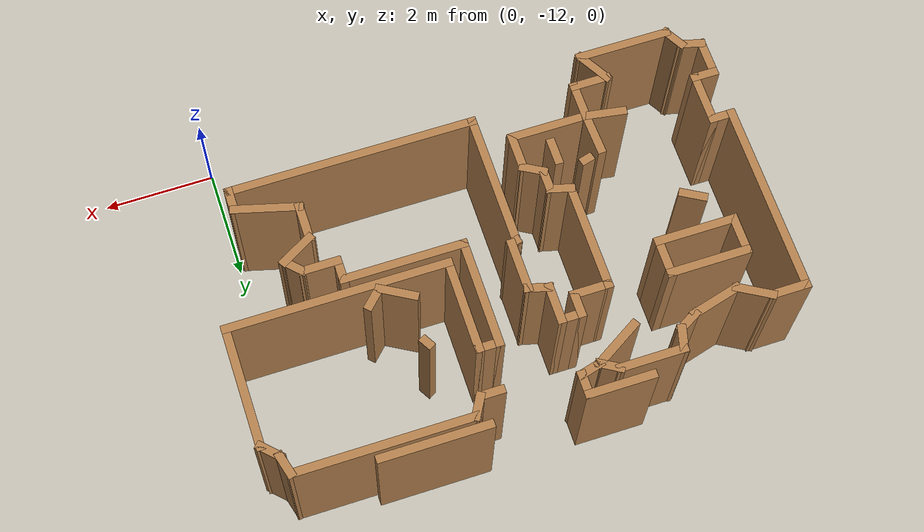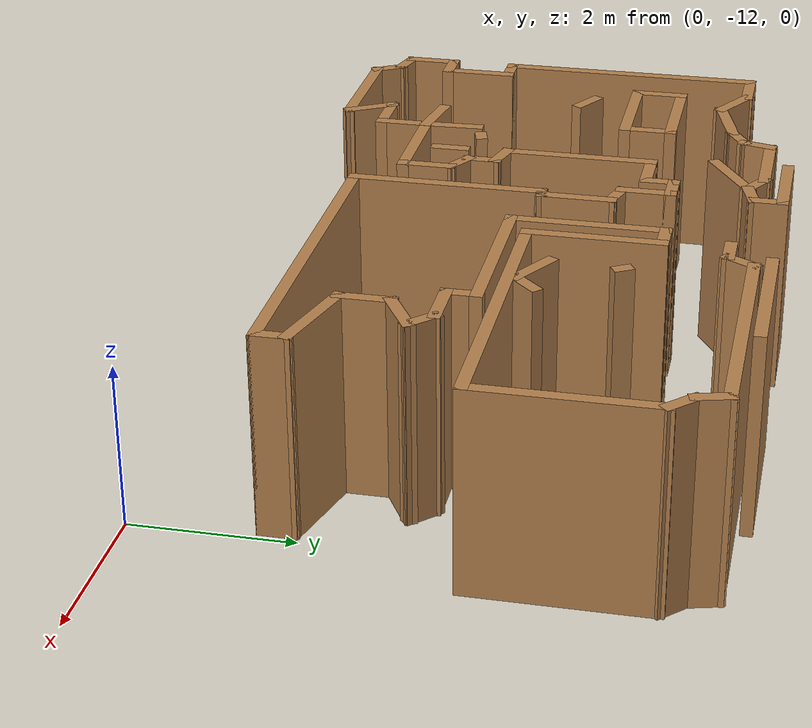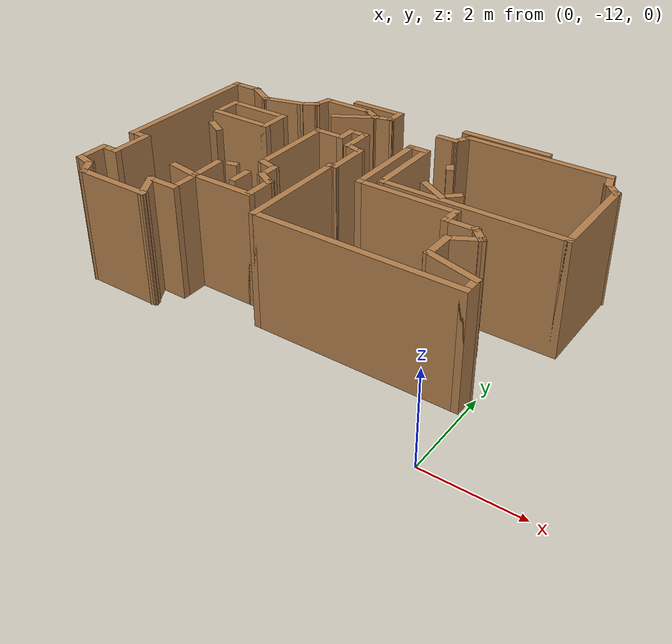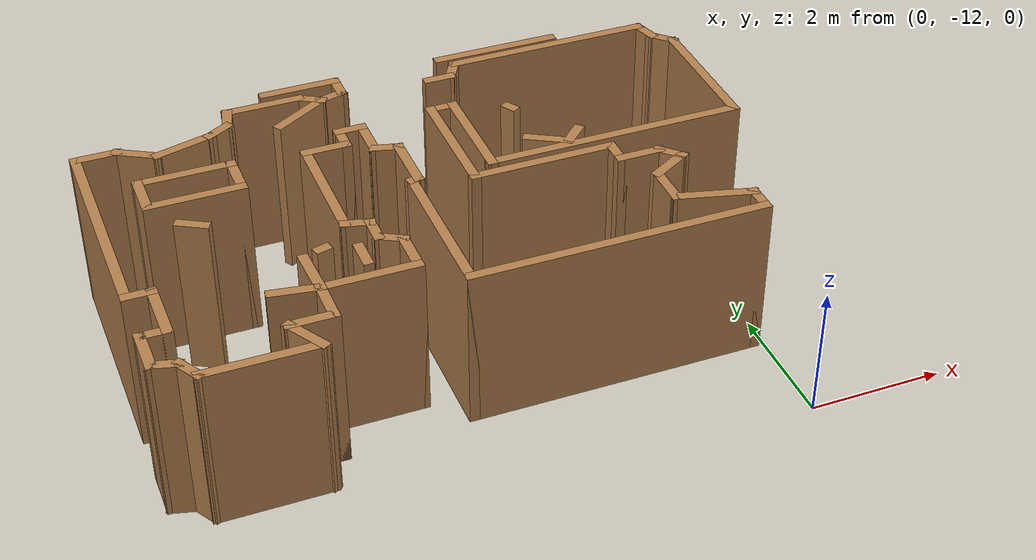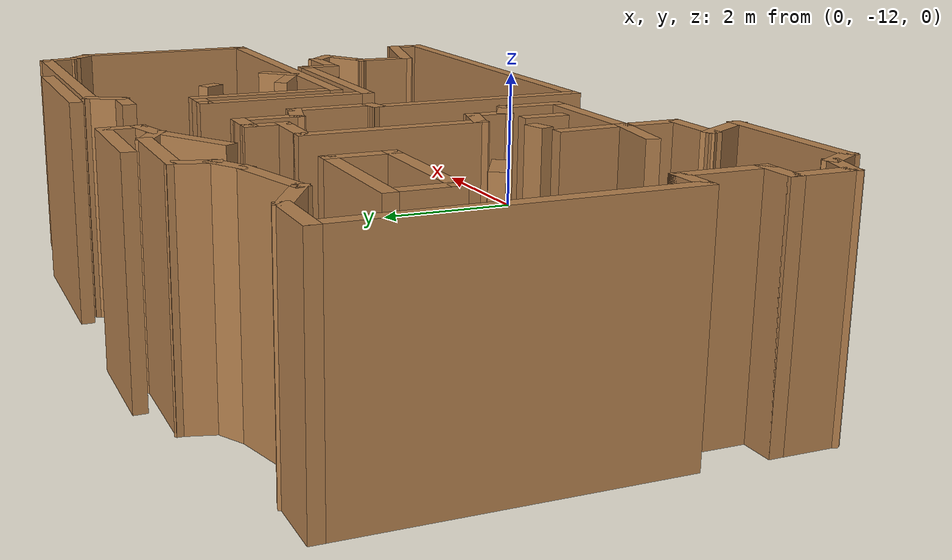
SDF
<sdf version="1.6">
 <model name="map_31">
  <pose>-4.20908 -1.66774 0 0 -0 0</pose>
  <link name="Wall_146">
   <collision name="Wall_146_Collision">
    <geometry><box><size>1.05065 0.15 2.5</size></box></geometry>
    <pose>0 0 1.25 0 -0 0</pose>
   </collision>
   <visual name="Wall_146_Visual">
    <pose>0 0 1.25 0 -0 0</pose>
    <geometry><box><size>1.05065 0.15 2.5</size></box></geometry>
    <material>
     <script><uri>file://media/materials/scripts/gazebo.material</uri><name>Gazebo/Wood</name></script>
     <ambient>1 1 1 1</ambient>
    </material>
    <meta><layer>0</layer></meta>
   </visual>
   <pose>-1.25131 -4.16078 0 0 -0 0.545501</pose>
  </link>
  <link name="Wall_148">
   <collision name="Wall_148_Collision">
    <geometry><box><size>0.796706 0.15 2.5</size></box></geometry>
    <pose>0 0 1.25 0 -0 0</pose>
   </collision>
   <visual name="Wall_148_Visual">
    <pose>0 0 1.25 0 -0 0</pose>
    <geometry><box><size>0.796706 0.15 2.5</size></box></geometry>
    <material>
     <script><uri>file://media/materials/scripts/gazebo.material</uri><name>Gazebo/Wood</name></script>
     <ambient>1 1 1 1</ambient>
    </material>
    <meta><layer>0</layer></meta>
   </visual>
   <pose>-2.51001 -8.20815 0 0 -0 -0.158782</pose>
  </link>
  <link name="Wall_150">
   <collision name="Wall_150_Collision">
    <geometry><box><size>0.833993 0.15 2.5</size></box></geometry>
    <pose>0 0 1.25 0 -0 0</pose>
   </collision>
   <visual name="Wall_150_Visual">
    <pose>0 0 1.25 0 -0 0</pose>
    <geometry><box><size>0.833993 0.15 2.5</size></box></geometry>
    <material>
     <script><uri>file://media/materials/scripts/gazebo.material</uri><name>Gazebo/Wood</name></script>
     <ambient>1 1 1 1</ambient>
    </material>
    <meta><layer>0</layer></meta>
   </visual>
   <pose>-2.20411 -7.91754 0 0 -0 -1.53165</pose>
  </link>
  <link name="Wall_152">
   <collision name="Wall_152_Collision">
    <geometry><box><size>0.5 0.15 2.5</size></box></geometry>
    <pose>0 0 1.25 0 -0 0</pose>
   </collision>
   <visual name="Wall_152_Visual">
    <pose>0 0 1.25 0 -0 0</pose>
    <geometry><box><size>0.5 0.15 2.5</size></box></geometry>
    <material>
     <script><uri>file://media/materials/scripts/gazebo.material</uri><name>Gazebo/Wood</name></script>
     <ambient>1 1 1 1</ambient>
    </material>
    <meta><layer>0</layer></meta>
   </visual>
   <pose>-1.45274 -7.7814 0 0 -0 -1.5708</pose>
  </link>
  <link name="Wall_154">
   <collision name="Wall_154_Collision">
    <geometry><box><size>0.25 0.15 2.5</size></box></geometry>
    <pose>0 0 1.25 0 -0 0</pose>
   </collision>
   <visual name="Wall_154_Visual">
    <pose>0 0 1.25 0 -0 0</pose>
    <geometry><box><size>0.25 0.15 2.5</size></box></geometry>
    <material>
     <script><uri>file://media/materials/scripts/gazebo.material</uri><name>Gazebo/Wood</name></script>
     <ambient>1 1 1 1</ambient>
    </material>
    <meta><layer>0</layer></meta>
   </visual>
   <pose>-1.92447 -7.4711 0 0 -0 0.261799</pose>
  </link>
  <link name="Wall_156">
   <collision name="Wall_156_Collision">
    <geometry><box><size>0.5 0.15 2.5</size></box></geometry>
    <pose>0 0 1.25 0 -0 0</pose>
   </collision>
   <visual name="Wall_156_Visual">
    <pose>0 0 1.25 0 -0 0</pose>
    <geometry><box><size>0.5 0.15 2.5</size></box></geometry>
    <material>
     <script><uri>file://media/materials/scripts/gazebo.material</uri><name>Gazebo/Wood</name></script>
     <ambient>1 1 1 1</ambient>
    </material>
    <meta><layer>0</layer></meta>
   </visual>
   <pose>-3.41191 -6.28675 0 0 -0 -0.523599</pose>
  </link>
  <link name="Wall_158">
   <collision name="Wall_158_Collision">
    <geometry><box><size>0.75 0.15 2.5</size></box></geometry>
    <pose>0 0 1.25 0 -0 0</pose>
   </collision>
   <visual name="Wall_158_Visual">
    <pose>0 0 1.25 0 -0 0</pose>
    <geometry><box><size>0.75 0.15 2.5</size></box></geometry>
    <material>
     <script><uri>file://media/materials/scripts/gazebo.material</uri><name>Gazebo/Wood</name></script>
     <ambient>1 1 1 1</ambient>
    </material>
    <meta><layer>0</layer></meta>
   </visual>
   <pose>-3.89995 -5.36741 0 0 -0 -1.5708</pose>
  </link>
  <link name="Wall_159">
   <collision name="Wall_159_Collision">
    <geometry><box><size>1.5 0.15 2.5</size></box></geometry>
    <pose>0 0 1.25 0 -0 0</pose>
   </collision>
   <visual name="Wall_159_Visual">
    <pose>0 0 1.25 0 -0 0</pose>
    <geometry><box><size>1.5 0.15 2.5</size></box></geometry>
    <material>
     <script><uri>file://media/materials/scripts/gazebo.material</uri><name>Gazebo/Wood</name></script>
     <ambient>1 1 1 1</ambient>
    </material>
    <meta><layer>0</layer></meta>
   </visual>
   <pose>-3.22495 -5.66741 0 0 -0 0</pose>
  </link>
  <link name="Wall_160">
   <collision name="Wall_160_Collision">
    <geometry><box><size>0.75 0.15 2.5</size></box></geometry>
    <pose>0 0 1.25 0 -0 0</pose>
   </collision>
   <visual name="Wall_160_Visual">
    <pose>0 0 1.25 0 -0 0</pose>
    <geometry><box><size>0.75 0.15 2.5</size></box></geometry>
    <material>
     <script><uri>file://media/materials/scripts/gazebo.material</uri><name>Gazebo/Wood</name></script>
     <ambient>1 1 1 1</ambient>
    </material>
    <meta><layer>0</layer></meta>
   </visual>
   <pose>-2.54996 -5.36741 0 0 -0 1.5708</pose>
  </link>
  <link name="Wall_161">
   <collision name="Wall_161_Collision">
    <geometry><box><size>1.5 0.15 2.5</size></box></geometry>
    <pose>0 0 1.25 0 -0 0</pose>
   </collision>
   <visual name="Wall_161_Visual">
    <pose>0 0 1.25 0 -0 0</pose>
    <geometry><box><size>1.5 0.15 2.5</size></box></geometry>
    <material>
     <script><uri>file://media/materials/scripts/gazebo.material</uri><name>Gazebo/Wood</name></script>
     <ambient>1 1 1 1</ambient>
    </material>
    <meta><layer>0</layer></meta>
   </visual>
   <pose>-3.22495 -5.06741 0 0 -0 3.14159</pose>
  </link>
  <link name="Wall_163">
   <collision name="Wall_163_Collision">
    <geometry><box><size>0.25 0.15 2.5</size></box></geometry>
    <pose>0 0 1.25 0 -0 0</pose>
   </collision>
   <visual name="Wall_163_Visual">
    <pose>0 0 1.25 0 -0 0</pose>
    <geometry><box><size>0.25 0.15 2.5</size></box></geometry>
    <material>
     <script><uri>file://media/materials/scripts/gazebo.material</uri><name>Gazebo/Wood</name></script>
     <ambient>1 1 1 1</ambient>
    </material>
    <meta><layer>0</layer></meta>
   </visual>
   <pose>1.69247 -5.1413 0 0 -0 -1.0472</pose>
  </link>
  <link name="Wall_165">
   <collision name="Wall_165_Collision">
    <geometry><box><size>0.75 0.15 2.5</size></box></geometry>
    <pose>0 0 1.25 0 -0 0</pose>
   </collision>
   <visual name="Wall_165_Visual">
    <pose>0 0 1.25 0 -0 0</pose>
    <geometry><box><size>0.75 0.15 2.5</size></box></geometry>
    <material>
     <script><uri>file://media/materials/scripts/gazebo.material</uri><name>Gazebo/Wood</name></script>
     <ambient>1 1 1 1</ambient>
    </material>
    <meta><layer>0</layer></meta>
   </visual>
   <pose>1.89668 -6.13512 0 0 -0 -0.523599</pose>
  </link>
  <link name="Wall_166">
   <collision name="Wall_166_Collision">
    <geometry><box><size>0.5 0.15 2.5</size></box></geometry>
    <pose>0 0 1.25 0 -0 0</pose>
   </collision>
   <visual name="Wall_166_Visual">
    <pose>0 0 1.25 0 -0 0</pose>
    <geometry><box><size>0.5 0.15 2.5</size></box></geometry>
    <material>
     <script><uri>file://media/materials/scripts/gazebo.material</uri><name>Gazebo/Wood</name></script>
     <ambient>1 1 1 1</ambient>
    </material>
    <meta><layer>0</layer></meta>
   </visual>
   <pose>2.28024 -6.16137 0 0 -0 0.785398</pose>
  </link>
  <link name="Wall_23">
   <collision name="Wall_23_Collision">
    <geometry><box><size>1.25 0.15 2.5</size></box></geometry>
    <pose>0 0 1.25 0 -0 0</pose>
   </collision>
   <visual name="Wall_23_Visual">
    <pose>0 0 1.25 0 -0 0</pose>
    <geometry><box><size>1.25 0.15 2.5</size></box></geometry>
    <material>
     <script><uri>file://media/materials/scripts/gazebo.material</uri><name>Gazebo/Wood</name></script>
     <ambient>1 1 1 1</ambient>
    </material>
    <meta><layer>0</layer></meta>
   </visual>
   <pose>-1.07827 -3.48654 0 0 -0 0</pose>
  </link>
  <link name="Wall_24">
   <collision name="Wall_24_Collision">
    <geometry><box><size>0.5 0.15 2.5</size></box></geometry>
    <pose>0 0 1.25 0 -0 0</pose>
   </collision>
   <visual name="Wall_24_Visual">
    <pose>0 0 1.25 0 -0 0</pose>
    <geometry><box><size>0.5 0.15 2.5</size></box></geometry>
    <material>
     <script><uri>file://media/materials/scripts/gazebo.material</uri><name>Gazebo/Wood</name></script>
     <ambient>1 1 1 1</ambient>
    </material>
    <meta><layer>0</layer></meta>
   </visual>
   <pose>-0.528269 -3.66154 0 0 -0 -1.5708</pose>
  </link>
  <link name="Wall_25">
   <collision name="Wall_25_Collision">
    <geometry><box><size>0.5 0.15 2.5</size></box></geometry>
    <pose>0 0 1.25 0 -0 0</pose>
   </collision>
   <visual name="Wall_25_Visual">
    <pose>0 0 1.25 0 -0 0</pose>
    <geometry><box><size>0.5 0.15 2.5</size></box></geometry>
    <material>
     <script><uri>file://media/materials/scripts/gazebo.material</uri><name>Gazebo/Wood</name></script>
     <ambient>1 1 1 1</ambient>
    </material>
    <meta><layer>0</layer></meta>
   </visual>
   <pose>-0.697306 -3.88183 0 0 -0 -2.87979</pose>
  </link>
  <link name="Wall_26">
   <collision name="Wall_26_Collision">
    <geometry><box><size>0.5 0.15 2.5</size></box></geometry>
    <pose>0 0 1.25 0 -0 0</pose>
   </collision>
   <visual name="Wall_26_Visual">
    <pose>0 0 1.25 0 -0 0</pose>
    <geometry><box><size>0.5 0.15 2.5</size></box></geometry>
    <material>
     <script><uri>file://media/materials/scripts/gazebo.material</uri><name>Gazebo/Wood</name></script>
     <ambient>1 1 1 1</ambient>
    </material>
    <meta><layer>0</layer></meta>
   </visual>
   <pose>-1.0179 -3.83963 0 0 -0 2.61799</pose>
  </link>
  <link name="Wall_27">
   <collision name="Wall_27_Collision">
    <geometry><box><size>1.25 0.15 2.5</size></box></geometry>
    <pose>0 0 1.25 0 -0 0</pose>
   </collision>
   <visual name="Wall_27_Visual">
    <pose>0 0 1.25 0 -0 0</pose>
    <geometry><box><size>1.25 0.15 2.5</size></box></geometry>
    <material>
     <script><uri>file://media/materials/scripts/gazebo.material</uri><name>Gazebo/Wood</name></script>
     <ambient>1 1 1 1</ambient>
    </material>
    <meta><layer>0</layer></meta>
   </visual>
   <pose>-1.71945 -3.75213 0 0 -0 3.14159</pose>
  </link>
  <link name="Wall_28">
   <collision name="Wall_28_Collision">
    <geometry><box><size>0.5 0.15 2.5</size></box></geometry>
    <pose>0 0 1.25 0 -0 0</pose>
   </collision>
   <visual name="Wall_28_Visual">
    <pose>0 0 1.25 0 -0 0</pose>
    <geometry><box><size>0.5 0.15 2.5</size></box></geometry>
    <material>
     <script><uri>file://media/materials/scripts/gazebo.material</uri><name>Gazebo/Wood</name></script>
     <ambient>1 1 1 1</ambient>
    </material>
    <meta><layer>0</layer></meta>
   </visual>
   <pose>-2.31474 -3.92116 0 0 -0 -1.8326</pose>
  </link>
  <link name="Wall_29">
   <collision name="Wall_29_Collision">
    <geometry><box><size>0.5 0.15 2.5</size></box></geometry>
    <pose>0 0 1.25 0 -0 0</pose>
   </collision>
   <visual name="Wall_29_Visual">
    <pose>0 0 1.25 0 -0 0</pose>
    <geometry><box><size>0.5 0.15 2.5</size></box></geometry>
    <material>
     <script><uri>file://media/materials/scripts/gazebo.material</uri><name>Gazebo/Wood</name></script>
     <ambient>1 1 1 1</ambient>
    </material>
    <meta><layer>0</layer></meta>
   </visual>
   <pose>-2.51159 -4.1777 0 0 -0 -2.61799</pose>
  </link>
  <link name="Wall_32">
   <collision name="Wall_32_Collision">
    <geometry><box><size>1 0.15 2.5</size></box></geometry>
    <pose>0 0 1.25 0 -0 0</pose>
   </collision>
   <visual name="Wall_32_Visual">
    <pose>0 0 1.25 0 -0 0</pose>
    <geometry><box><size>1 0.15 2.5</size></box></geometry>
    <material>
     <script><uri>file://media/materials/scripts/gazebo.material</uri><name>Gazebo/Wood</name></script>
     <ambient>1 1 1 1</ambient>
    </material>
    <meta><layer>0</layer></meta>
   </visual>
   <pose>-3.07367 -4.3752 0 0 -0 -2.87979</pose>
  </link>
  <link name="Wall_33">
   <collision name="Wall_33_Collision">
    <geometry><box><size>0.75 0.15 2.5</size></box></geometry>
    <pose>0 0 1.25 0 -0 0</pose>
   </collision>
   <visual name="Wall_33_Visual">
    <pose>0 0 1.25 0 -0 0</pose>
    <geometry><box><size>0.75 0.15 2.5</size></box></geometry>
    <material>
     <script><uri>file://media/materials/scripts/gazebo.material</uri><name>Gazebo/Wood</name></script>
     <ambient>1 1 1 1</ambient>
    </material>
    <meta><layer>0</layer></meta>
   </visual>
   <pose>-3.74399 -4.3352 0 0 -0 2.61799</pose>
  </link>
  <link name="Wall_34">
   <collision name="Wall_34_Collision">
    <geometry><box><size>0.75 0.15 2.5</size></box></geometry>
    <pose>0 0 1.25 0 -0 0</pose>
   </collision>
   <visual name="Wall_34_Visual">
    <pose>0 0 1.25 0 -0 0</pose>
    <geometry><box><size>0.75 0.15 2.5</size></box></geometry>
    <material>
     <script><uri>file://media/materials/scripts/gazebo.material</uri><name>Gazebo/Wood</name></script>
     <ambient>1 1 1 1</ambient>
    </material>
    <meta><layer>0</layer></meta>
   </visual>
   <pose>-4.3038 -4.1852 0 0 -0 3.14159</pose>
  </link>
  <link name="Wall_35">
   <collision name="Wall_35_Collision">
    <geometry><box><size>3.5 0.15 2.5</size></box></geometry>
    <pose>0 0 1.25 0 -0 0</pose>
   </collision>
   <visual name="Wall_35_Visual">
    <pose>0 0 1.25 0 -0 0</pose>
    <geometry><box><size>3.5 0.15 2.5</size></box></geometry>
    <material>
     <script><uri>file://media/materials/scripts/gazebo.material</uri><name>Gazebo/Wood</name></script>
     <ambient>1 1 1 1</ambient>
    </material>
    <meta><layer>0</layer></meta>
   </visual>
   <pose>-4.6038 -5.8602 0 0 -0 -1.5708</pose>
  </link>
  <link name="Wall_36">
   <collision name="Wall_36_Collision">
    <geometry><box><size>0.5 0.15 2.5</size></box></geometry>
    <pose>0 0 1.25 0 -0 0</pose>
   </collision>
   <visual name="Wall_36_Visual">
    <pose>0 0 1.25 0 -0 0</pose>
    <geometry><box><size>0.5 0.15 2.5</size></box></geometry>
    <material>
     <script><uri>file://media/materials/scripts/gazebo.material</uri><name>Gazebo/Wood</name></script>
     <ambient>1 1 1 1</ambient>
    </material>
    <meta><layer>0</layer></meta>
   </visual>
   <pose>-4.4288 -7.5352 0 0 -0 0</pose>
  </link>
  <link name="Wall_37">
   <collision name="Wall_37_Collision">
    <geometry><box><size>1 0.15 2.5</size></box></geometry>
    <pose>0 0 1.25 0 -0 0</pose>
   </collision>
   <visual name="Wall_37_Visual">
    <pose>0 0 1.25 0 -0 0</pose>
    <geometry><box><size>1 0.15 2.5</size></box></geometry>
    <material>
     <script><uri>file://media/materials/scripts/gazebo.material</uri><name>Gazebo/Wood</name></script>
     <ambient>1 1 1 1</ambient>
    </material>
    <meta><layer>0</layer></meta>
   </visual>
   <pose>-4.2538 -7.9602 0 0 -0 -1.5708</pose>
  </link>
  <link name="Wall_38">
   <collision name="Wall_38_Collision">
    <geometry><box><size>0.5 0.15 2.5</size></box></geometry>
    <pose>0 0 1.25 0 -0 0</pose>
   </collision>
   <visual name="Wall_38_Visual">
    <pose>0 0 1.25 0 -0 0</pose>
    <geometry><box><size>0.5 0.15 2.5</size></box></geometry>
    <material>
     <script><uri>file://media/materials/scripts/gazebo.material</uri><name>Gazebo/Wood</name></script>
     <ambient>1 1 1 1</ambient>
    </material>
    <meta><layer>0</layer></meta>
   </visual>
   <pose>-4.4288 -8.3852 0 0 -0 3.14159</pose>
  </link>
  <link name="Wall_39">
   <collision name="Wall_39_Collision">
    <geometry><box><size>0.75 0.15 2.5</size></box></geometry>
    <pose>0 0 1.25 0 -0 0</pose>
   </collision>
   <visual name="Wall_39_Visual">
    <pose>0 0 1.25 0 -0 0</pose>
    <geometry><box><size>0.75 0.15 2.5</size></box></geometry>
    <material>
     <script><uri>file://media/materials/scripts/gazebo.material</uri><name>Gazebo/Wood</name></script>
     <ambient>1 1 1 1</ambient>
    </material>
    <meta><layer>0</layer></meta>
   </visual>
   <pose>-4.6038 -8.6852 0 0 -0 -1.5708</pose>
  </link>
  <link name="Wall_40">
   <collision name="Wall_40_Collision">
    <geometry><box><size>0.5 0.15 2.5</size></box></geometry>
    <pose>0 0 1.25 0 -0 0</pose>
   </collision>
   <visual name="Wall_40_Visual">
    <pose>0 0 1.25 0 -0 0</pose>
    <geometry><box><size>0.5 0.15 2.5</size></box></geometry>
    <material>
     <script><uri>file://media/materials/scripts/gazebo.material</uri><name>Gazebo/Wood</name></script>
     <ambient>1 1 1 1</ambient>
    </material>
    <meta><layer>0</layer></meta>
   </visual>
   <pose>-4.43476 -9.03049 0 0 -0 -0.261799</pose>
  </link>
  <link name="Wall_41">
   <collision name="Wall_41_Collision">
    <geometry><box><size>0.5 0.15 2.5</size></box></geometry>
    <pose>0 0 1.25 0 -0 0</pose>
   </collision>
   <visual name="Wall_41_Visual">
    <pose>0 0 1.25 0 -0 0</pose>
    <geometry><box><size>0.5 0.15 2.5</size></box></geometry>
    <material>
     <script><uri>file://media/materials/scripts/gazebo.material</uri><name>Gazebo/Wood</name></script>
     <ambient>1 1 1 1</ambient>
    </material>
    <meta><layer>0</layer></meta>
   </visual>
   <pose>-4.17823 -9.22734 0 0 -0 -1.0472</pose>
  </link>
  <link name="Wall_42">
   <collision name="Wall_42_Collision">
    <geometry><box><size>1.75 0.15 2.5</size></box></geometry>
    <pose>0 0 1.25 0 -0 0</pose>
   </collision>
   <visual name="Wall_42_Visual">
    <pose>0 0 1.25 0 -0 0</pose>
    <geometry><box><size>1.75 0.15 2.5</size></box></geometry>
    <material>
     <script><uri>file://media/materials/scripts/gazebo.material</uri><name>Gazebo/Wood</name></script>
     <ambient>1 1 1 1</ambient>
    </material>
    <meta><layer>0</layer></meta>
   </visual>
   <pose>-3.29073 -9.37889 0 0 -0 0</pose>
  </link>
  <link name="Wall_43">
   <collision name="Wall_43_Collision">
    <geometry><box><size>0.75 0.15 2.5</size></box></geometry>
    <pose>0 0 1.25 0 -0 0</pose>
   </collision>
   <visual name="Wall_43_Visual">
    <pose>0 0 1.25 0 -0 0</pose>
    <geometry><box><size>0.75 0.15 2.5</size></box></geometry>
    <material>
     <script><uri>file://media/materials/scripts/gazebo.material</uri><name>Gazebo/Wood</name></script>
     <ambient>1 1 1 1</ambient>
    </material>
    <meta><layer>0</layer></meta>
   </visual>
   <pose>-2.64073 -9.11908 0 0 -0 2.0944</pose>
  </link>
  <link name="Wall_44">
   <collision name="Wall_44_Collision">
    <geometry><box><size>0.75 0.15 2.5</size></box></geometry>
    <pose>0 0 1.25 0 -0 0</pose>
   </collision>
   <visual name="Wall_44_Visual">
    <pose>0 0 1.25 0 -0 0</pose>
    <geometry><box><size>0.75 0.15 2.5</size></box></geometry>
    <material>
     <script><uri>file://media/materials/scripts/gazebo.material</uri><name>Gazebo/Wood</name></script>
     <ambient>1 1 1 1</ambient>
    </material>
    <meta><layer>0</layer></meta>
   </visual>
   <pose>-2.49072 -8.85928 0 0 -0 0</pose>
  </link>
  <link name="Wall_45">
   <collision name="Wall_45_Collision">
    <geometry><box><size>0.75 0.15 2.5</size></box></geometry>
    <pose>0 0 1.25 0 -0 0</pose>
   </collision>
   <visual name="Wall_45_Visual">
    <pose>0 0 1.25 0 -0 0</pose>
    <geometry><box><size>0.75 0.15 2.5</size></box></geometry>
    <material>
     <script><uri>file://media/materials/scripts/gazebo.material</uri><name>Gazebo/Wood</name></script>
     <ambient>1 1 1 1</ambient>
    </material>
    <meta><layer>0</layer></meta>
   </visual>
   <pose>-2.19073 -8.55928 0 0 -0 1.5708</pose>
  </link>
  <link name="Wall_46">
   <collision name="Wall_46_Collision">
    <geometry><box><size>1.5 0.15 2.5</size></box></geometry>
    <pose>0 0 1.25 0 -0 0</pose>
   </collision>
   <visual name="Wall_46_Visual">
    <pose>0 0 1.25 0 -0 0</pose>
    <geometry><box><size>1.5 0.15 2.5</size></box></geometry>
    <material>
     <script><uri>file://media/materials/scripts/gazebo.material</uri><name>Gazebo/Wood</name></script>
     <ambient>1 1 1 1</ambient>
    </material>
    <meta><layer>0</layer></meta>
   </visual>
   <pose>-1.51572 -8.25928 0 0 -0 0</pose>
  </link>
  <link name="Wall_47">
   <collision name="Wall_47_Collision">
    <geometry><box><size>0.75 0.15 2.5</size></box></geometry>
    <pose>0 0 1.25 0 -0 0</pose>
   </collision>
   <visual name="Wall_47_Visual">
    <pose>0 0 1.25 0 -0 0</pose>
    <geometry><box><size>0.75 0.15 2.5</size></box></geometry>
    <material>
     <script><uri>file://media/materials/scripts/gazebo.material</uri><name>Gazebo/Wood</name></script>
     <ambient>1 1 1 1</ambient>
    </material>
    <meta><layer>0</layer></meta>
   </visual>
   <pose>-0.840725 -7.95928 0 0 -0 1.5708</pose>
  </link>
  <link name="Wall_48">
   <collision name="Wall_48_Collision">
    <geometry><box><size>0.5 0.15 2.5</size></box></geometry>
    <pose>0 0 1.25 0 -0 0</pose>
   </collision>
   <visual name="Wall_48_Visual">
    <pose>0 0 1.25 0 -0 0</pose>
    <geometry><box><size>0.5 0.15 2.5</size></box></geometry>
    <material>
     <script><uri>file://media/materials/scripts/gazebo.material</uri><name>Gazebo/Wood</name></script>
     <ambient>1 1 1 1</ambient>
    </material>
    <meta><layer>0</layer></meta>
   </visual>
   <pose>-0.99228 -7.57178 0 0 -0 2.61799</pose>
  </link>
  <link name="Wall_50">
   <collision name="Wall_50_Collision">
    <geometry><box><size>0.5 0.15 2.5</size></box></geometry>
    <pose>0 0 1.25 0 -0 0</pose>
   </collision>
   <visual name="Wall_50_Visual">
    <pose>0 0 1.25 0 -0 0</pose>
    <geometry><box><size>0.5 0.15 2.5</size></box></geometry>
    <material>
     <script><uri>file://media/materials/scripts/gazebo.material</uri><name>Gazebo/Wood</name></script>
     <ambient>1 1 1 1</ambient>
    </material>
    <meta><layer>0</layer></meta>
   </visual>
   <pose>-1.14383 -7.30928 0 0 -0 1.5708</pose>
  </link>
  <link name="Wall_51">
   <collision name="Wall_51_Collision">
    <geometry><box><size>0.5 0.15 2.5</size></box></geometry>
    <pose>0 0 1.25 0 -0 0</pose>
   </collision>
   <visual name="Wall_51_Visual">
    <pose>0 0 1.25 0 -0 0</pose>
    <geometry><box><size>0.5 0.15 2.5</size></box></geometry>
    <material>
     <script><uri>file://media/materials/scripts/gazebo.material</uri><name>Gazebo/Wood</name></script>
     <ambient>1 1 1 1</ambient>
    </material>
    <meta><layer>0</layer></meta>
   </visual>
   <pose>-1.31287 -7.08898 0 0 -0 2.87979</pose>
  </link>
  <link name="Wall_52">
   <collision name="Wall_52_Collision">
    <geometry><box><size>2 0.15 2.5</size></box></geometry>
    <pose>0 0 1.25 0 -0 0</pose>
   </collision>
   <visual name="Wall_52_Visual">
    <pose>0 0 1.25 0 -0 0</pose>
    <geometry><box><size>2 0.15 2.5</size></box></geometry>
    <material>
     <script><uri>file://media/materials/scripts/gazebo.material</uri><name>Gazebo/Wood</name></script>
     <ambient>1 1 1 1</ambient>
    </material>
    <meta><layer>0</layer></meta>
   </visual>
   <pose>-1.48191 -6.11869 0 0 -0 1.5708</pose>
  </link>
  <link name="Wall_53">
   <collision name="Wall_53_Collision">
    <geometry><box><size>0.75 0.15 2.5</size></box></geometry>
    <pose>0 0 1.25 0 -0 0</pose>
   </collision>
   <visual name="Wall_53_Visual">
    <pose>0 0 1.25 0 -0 0</pose>
    <geometry><box><size>0.75 0.15 2.5</size></box></geometry>
    <material>
     <script><uri>file://media/materials/scripts/gazebo.material</uri><name>Gazebo/Wood</name></script>
     <ambient>1 1 1 1</ambient>
    </material>
    <meta><layer>0</layer></meta>
   </visual>
   <pose>-1.18191 -5.19369 0 0 -0 0</pose>
  </link>
  <link name="Wall_54">
   <collision name="Wall_54_Collision">
    <geometry><box><size>0.5 0.15 2.5</size></box></geometry>
    <pose>0 0 1.25 0 -0 0</pose>
   </collision>
   <visual name="Wall_54_Visual">
    <pose>0 0 1.25 0 -0 0</pose>
    <geometry><box><size>0.5 0.15 2.5</size></box></geometry>
    <material>
     <script><uri>file://media/materials/scripts/gazebo.material</uri><name>Gazebo/Wood</name></script>
     <ambient>1 1 1 1</ambient>
    </material>
    <meta><layer>0</layer></meta>
   </visual>
   <pose>-0.881908 -5.01869 0 0 -0 1.5708</pose>
  </link>
  <link name="Wall_55">
   <collision name="Wall_55_Collision">
    <geometry><box><size>0.5 0.15 2.5</size></box></geometry>
    <pose>0 0 1.25 0 -0 0</pose>
   </collision>
   <visual name="Wall_55_Visual">
    <pose>0 0 1.25 0 -0 0</pose>
    <geometry><box><size>0.5 0.15 2.5</size></box></geometry>
    <material>
     <script><uri>file://media/materials/scripts/gazebo.material</uri><name>Gazebo/Wood</name></script>
     <ambient>1 1 1 1</ambient>
    </material>
    <meta><layer>0</layer></meta>
   </visual>
   <pose>-0.706908 -4.84369 0 0 -0 0</pose>
  </link>
  <link name="Wall_56">
   <collision name="Wall_56_Collision">
    <geometry><box><size>0.75 0.15 2.5</size></box></geometry>
    <pose>0 0 1.25 0 -0 0</pose>
   </collision>
   <visual name="Wall_56_Visual">
    <pose>0 0 1.25 0 -0 0</pose>
    <geometry><box><size>0.75 0.15 2.5</size></box></geometry>
    <material>
     <script><uri>file://media/materials/scripts/gazebo.material</uri><name>Gazebo/Wood</name></script>
     <ambient>1 1 1 1</ambient>
    </material>
    <meta><layer>0</layer></meta>
   </visual>
   <pose>-0.531908 -5.14369 0 0 -0 -1.5708</pose>
  </link>
  <link name="Wall_57">
   <collision name="Wall_57_Collision">
    <geometry><box><size>0.5 0.15 2.5</size></box></geometry>
    <pose>0 0 1.25 0 -0 0</pose>
   </collision>
   <visual name="Wall_57_Visual">
    <pose>0 0 1.25 0 -0 0</pose>
    <geometry><box><size>0.5 0.15 2.5</size></box></geometry>
    <material>
     <script><uri>file://media/materials/scripts/gazebo.material</uri><name>Gazebo/Wood</name></script>
     <ambient>1 1 1 1</ambient>
    </material>
    <meta><layer>0</layer></meta>
   </visual>
   <pose>-0.362871 -5.48898 0 0 -0 -0.261799</pose>
  </link>
  <link name="Wall_58">
   <collision name="Wall_58_Collision">
    <geometry><box><size>1 0.15 2.5</size></box></geometry>
    <pose>0 0 1.25 0 -0 0</pose>
   </collision>
   <visual name="Wall_58_Visual">
    <pose>0 0 1.25 0 -0 0</pose>
    <geometry><box><size>1 0.15 2.5</size></box></geometry>
    <material>
     <script><uri>file://media/materials/scripts/gazebo.material</uri><name>Gazebo/Wood</name></script>
     <ambient>1 1 1 1</ambient>
    </material>
    <meta><layer>0</layer></meta>
   </visual>
   <pose>-0.193834 -5.95928 0 0 -0 -1.5708</pose>
  </link>
  <link name="Wall_59">
   <collision name="Wall_59_Collision">
    <geometry><box><size>0.25 0.15 2.5</size></box></geometry>
    <pose>0 0 1.25 0 -0 0</pose>
   </collision>
   <visual name="Wall_59_Visual">
    <pose>0 0 1.25 0 -0 0</pose>
    <geometry><box><size>0.25 0.15 2.5</size></box></geometry>
    <material>
     <script><uri>file://media/materials/scripts/gazebo.material</uri><name>Gazebo/Wood</name></script>
     <ambient>1 1 1 1</ambient>
    </material>
    <meta><layer>0</layer></meta>
   </visual>
   <pose>-0.242131 -6.39722 0 0 -0 -2.87979</pose>
  </link>
  <link name="Wall_60">
   <collision name="Wall_60_Collision">
    <geometry><box><size>2.5 0.15 2.5</size></box></geometry>
    <pose>0 0 1.25 0 -0 0</pose>
   </collision>
   <visual name="Wall_60_Visual">
    <pose>0 0 1.25 0 -0 0</pose>
    <geometry><box><size>2.5 0.15 2.5</size></box></geometry>
    <material>
     <script><uri>file://media/materials/scripts/gazebo.material</uri><name>Gazebo/Wood</name></script>
     <ambient>1 1 1 1</ambient>
    </material>
    <meta><layer>0</layer></meta>
   </visual>
   <pose>-0.290427 -7.58516 0 0 -0 -1.5708</pose>
  </link>
  <link name="Wall_61">
   <collision name="Wall_61_Collision">
    <geometry><box><size>4.5 0.15 2.5</size></box></geometry>
    <pose>0 0 1.25 0 -0 0</pose>
   </collision>
   <visual name="Wall_61_Visual">
    <pose>0 0 1.25 0 -0 0</pose>
    <geometry><box><size>4.5 0.15 2.5</size></box></geometry>
    <material>
     <script><uri>file://media/materials/scripts/gazebo.material</uri><name>Gazebo/Wood</name></script>
     <ambient>1 1 1 1</ambient>
    </material>
    <meta><layer>0</layer></meta>
   </visual>
   <pose>1.88457 -8.76016 0 0 -0 0</pose>
  </link>
  <link name="Wall_62">
   <collision name="Wall_62_Collision">
    <geometry><box><size>0.5 0.15 2.5</size></box></geometry>
    <pose>0 0 1.25 0 -0 0</pose>
   </collision>
   <visual name="Wall_62_Visual">
    <pose>0 0 1.25 0 -0 0</pose>
    <geometry><box><size>0.5 0.15 2.5</size></box></geometry>
    <material>
     <script><uri>file://media/materials/scripts/gazebo.material</uri><name>Gazebo/Wood</name></script>
     <ambient>1 1 1 1</ambient>
    </material>
    <meta><layer>0</layer></meta>
   </visual>
   <pose>4.05957 -8.58516 0 0 -0 1.5708</pose>
  </link>
  <link name="Wall_63">
   <collision name="Wall_63_Collision">
    <geometry><box><size>1.25 0.15 2.5</size></box></geometry>
    <pose>0 0 1.25 0 -0 0</pose>
   </collision>
   <visual name="Wall_63_Visual">
    <pose>0 0 1.25 0 -0 0</pose>
    <geometry><box><size>1.25 0.15 2.5</size></box></geometry>
    <material>
     <script><uri>file://media/materials/scripts/gazebo.material</uri><name>Gazebo/Wood</name></script>
     <ambient>1 1 1 1</ambient>
    </material>
    <meta><layer>0</layer></meta>
   </visual>
   <pose>3.52831 -8.26781 0 0 -0 2.87979</pose>
  </link>
  <link name="Wall_64">
   <collision name="Wall_64_Collision">
    <geometry><box><size>0.75 0.15 2.5</size></box></geometry>
    <pose>0 0 1.25 0 -0 0</pose>
   </collision>
   <visual name="Wall_64_Visual">
    <pose>0 0 1.25 0 -0 0</pose>
    <geometry><box><size>0.75 0.15 2.5</size></box></geometry>
    <material>
     <script><uri>file://media/materials/scripts/gazebo.material</uri><name>Gazebo/Wood</name></script>
     <ambient>1 1 1 1</ambient>
    </material>
    <meta><layer>0</layer></meta>
   </visual>
   <pose>2.99706 -7.82546 0 0 -0 1.5708</pose>
  </link>
  <link name="Wall_65">
   <collision name="Wall_65_Collision">
    <geometry><box><size>0.75 0.15 2.5</size></box></geometry>
    <pose>0 0 1.25 0 -0 0</pose>
   </collision>
   <visual name="Wall_65_Visual">
    <pose>0 0 1.25 0 -0 0</pose>
    <geometry><box><size>0.75 0.15 2.5</size></box></geometry>
    <material>
     <script><uri>file://media/materials/scripts/gazebo.material</uri><name>Gazebo/Wood</name></script>
     <ambient>1 1 1 1</ambient>
    </material>
    <meta><layer>0</layer></meta>
   </visual>
   <pose>3.25686 -7.37546 0 0 -0 0.523599</pose>
  </link>
  <link name="Wall_66">
   <collision name="Wall_66_Collision">
    <geometry><box><size>0.5 0.15 2.5</size></box></geometry>
    <pose>0 0 1.25 0 -0 0</pose>
   </collision>
   <visual name="Wall_66_Visual">
    <pose>0 0 1.25 0 -0 0</pose>
    <geometry><box><size>0.5 0.15 2.5</size></box></geometry>
    <material>
     <script><uri>file://media/materials/scripts/gazebo.material</uri><name>Gazebo/Wood</name></script>
     <ambient>1 1 1 1</ambient>
    </material>
    <meta><layer>0</layer></meta>
   </visual>
   <pose>3.39293 -7.10171 0 0 -0 2.35619</pose>
  </link>
  <link name="Wall_67">
   <collision name="Wall_67_Collision">
    <geometry><box><size>0.75 0.15 2.5</size></box></geometry>
    <pose>0 0 1.25 0 -0 0</pose>
   </collision>
   <visual name="Wall_67_Visual">
    <pose>0 0 1.25 0 -0 0</pose>
    <geometry><box><size>0.75 0.15 2.5</size></box></geometry>
    <material>
     <script><uri>file://media/materials/scripts/gazebo.material</uri><name>Gazebo/Wood</name></script>
     <ambient>1 1 1 1</ambient>
    </material>
    <meta><layer>0</layer></meta>
   </visual>
   <pose>2.96918 -6.97797 0 0 -0 3.14159</pose>
  </link>
  <link name="Wall_70">
   <collision name="Wall_70_Collision">
    <geometry><box><size>0.5 0.15 2.5</size></box></geometry>
    <pose>0 0 1.25 0 -0 0</pose>
   </collision>
   <visual name="Wall_70_Visual">
    <pose>0 0 1.25 0 -0 0</pose>
    <geometry><box><size>0.5 0.15 2.5</size></box></geometry>
    <material>
     <script><uri>file://media/materials/scripts/gazebo.material</uri><name>Gazebo/Wood</name></script>
     <ambient>1 1 1 1</ambient>
    </material>
    <meta><layer>0</layer></meta>
   </visual>
   <pose>2.66918 -6.80297 0 0 -0 1.5708</pose>
  </link>
  <link name="Wall_71">
   <collision name="Wall_71_Collision">
    <geometry><box><size>2.25 0.15 2.5</size></box></geometry>
    <pose>0 0 1.25 0 -0 0</pose>
   </collision>
   <visual name="Wall_71_Visual">
    <pose>0 0 1.25 0 -0 0</pose>
    <geometry><box><size>2.25 0.15 2.5</size></box></geometry>
    <material>
     <script><uri>file://media/materials/scripts/gazebo.material</uri><name>Gazebo/Wood</name></script>
     <ambient>1 1 1 1</ambient>
    </material>
    <meta><layer>0</layer></meta>
   </visual>
   <pose>1.61918 -6.62797 0 0 -0 3.14159</pose>
  </link>
  <link name="Wall_72">
   <collision name="Wall_72_Collision">
    <geometry><box><size>2 0.15 2.5</size></box></geometry>
    <pose>0 0 1.25 0 -0 0</pose>
   </collision>
   <visual name="Wall_72_Visual">
    <pose>0 0 1.25 0 -0 0</pose>
    <geometry><box><size>2 0.15 2.5</size></box></geometry>
    <material>
     <script><uri>file://media/materials/scripts/gazebo.material</uri><name>Gazebo/Wood</name></script>
     <ambient>1 1 1 1</ambient>
    </material>
    <meta><layer>0</layer></meta>
   </visual>
   <pose>0.569183 -5.70297 0 0 -0 1.5708</pose>
  </link>
  <link name="Wall_73">
   <collision name="Wall_73_Collision">
    <geometry><box><size>0.5 0.15 2.5</size></box></geometry>
    <pose>0 0 1.25 0 -0 0</pose>
   </collision>
   <visual name="Wall_73_Visual">
    <pose>0 0 1.25 0 -0 0</pose>
    <geometry><box><size>0.5 0.15 2.5</size></box></geometry>
    <material>
     <script><uri>file://media/materials/scripts/gazebo.material</uri><name>Gazebo/Wood</name></script>
     <ambient>1 1 1 1</ambient>
    </material>
    <meta><layer>0</layer></meta>
   </visual>
   <pose>0.744183 -4.77797 0 0 -0 0</pose>
  </link>
  <link name="Wall_74">
   <collision name="Wall_74_Collision">
    <geometry><box><size>1.75 0.15 2.5</size></box></geometry>
    <pose>0 0 1.25 0 -0 0</pose>
   </collision>
   <visual name="Wall_74_Visual">
    <pose>0 0 1.25 0 -0 0</pose>
    <geometry><box><size>1.75 0.15 2.5</size></box></geometry>
    <material>
     <script><uri>file://media/materials/scripts/gazebo.material</uri><name>Gazebo/Wood</name></script>
     <ambient>1 1 1 1</ambient>
    </material>
    <meta><layer>0</layer></meta>
   </visual>
   <pose>0.919183 -5.57797 0 0 -0 -1.5708</pose>
  </link>
  <link name="Wall_75">
   <collision name="Wall_75_Collision">
    <geometry><box><size>4 0.15 2.5</size></box></geometry>
    <pose>0 0 1.25 0 -0 0</pose>
   </collision>
   <visual name="Wall_75_Visual">
    <pose>0 0 1.25 0 -0 0</pose>
    <geometry><box><size>4 0.15 2.5</size></box></geometry>
    <material>
     <script><uri>file://media/materials/scripts/gazebo.material</uri><name>Gazebo/Wood</name></script>
     <ambient>1 1 1 1</ambient>
    </material>
    <meta><layer>0</layer></meta>
   </visual>
   <pose>2.84418 -6.37797 0 0 -0 0</pose>
  </link>
  <link name="Wall_76">
   <collision name="Wall_76_Collision">
    <geometry><box><size>2.25 0.15 2.5</size></box></geometry>
    <pose>0 0 1.25 0 -0 0</pose>
   </collision>
   <visual name="Wall_76_Visual">
    <pose>0 0 1.25 0 -0 0</pose>
    <geometry><box><size>2.25 0.15 2.5</size></box></geometry>
    <material>
     <script><uri>file://media/materials/scripts/gazebo.material</uri><name>Gazebo/Wood</name></script>
     <ambient>1 1 1 1</ambient>
    </material>
    <meta><layer>0</layer></meta>
   </visual>
   <pose>4.76918 -5.32797 0 0 -0 1.5708</pose>
  </link>
  <link name="Wall_77">
   <collision name="Wall_77_Collision">
    <geometry><box><size>0.5 0.15 2.5</size></box></geometry>
    <pose>0 0 1.25 0 -0 0</pose>
   </collision>
   <visual name="Wall_77_Visual">
    <pose>0 0 1.25 0 -0 0</pose>
    <geometry><box><size>0.5 0.15 2.5</size></box></geometry>
    <material>
     <script><uri>file://media/materials/scripts/gazebo.material</uri><name>Gazebo/Wood</name></script>
     <ambient>1 1 1 1</ambient>
    </material>
    <meta><layer>0</layer></meta>
   </visual>
   <pose>4.64544 -4.15423 0 0 -0 2.35619</pose>
  </link>
  <link name="Wall_78">
   <collision name="Wall_78_Collision">
    <geometry><box><size>0.5 0.15 2.5</size></box></geometry>
    <pose>0 0 1.25 0 -0 0</pose>
   </collision>
   <visual name="Wall_78_Visual">
    <pose>0 0 1.25 0 -0 0</pose>
    <geometry><box><size>0.5 0.15 2.5</size></box></geometry>
    <material>
     <script><uri>file://media/materials/scripts/gazebo.material</uri><name>Gazebo/Wood</name></script>
     <ambient>1 1 1 1</ambient>
    </material>
    <meta><layer>0</layer></meta>
   </visual>
   <pose>4.4764 -3.86144 0 0 -0 1.8326</pose>
  </link>
  <link name="Wall_79">
   <collision name="Wall_79_Collision">
    <geometry><box><size>3.25 0.15 2.5</size></box></geometry>
    <pose>0 0 1.25 0 -0 0</pose>
   </collision>
   <visual name="Wall_79_Visual">
    <pose>0 0 1.25 0 -0 0</pose>
    <geometry><box><size>3.25 0.15 2.5</size></box></geometry>
    <material>
     <script><uri>file://media/materials/scripts/gazebo.material</uri><name>Gazebo/Wood</name></script>
     <ambient>1 1 1 1</ambient>
    </material>
    <meta><layer>0</layer></meta>
   </visual>
   <pose>2.88111 -3.69241 0 0 -0 3.14159</pose>
  </link>
  <link name="Wall_80">
   <collision name="Wall_80_Collision">
    <geometry><box><size>0.5 0.15 2.5</size></box></geometry>
    <pose>0 0 1.25 0 -0 0</pose>
   </collision>
   <visual name="Wall_80_Visual">
    <pose>0 0 1.25 0 -0 0</pose>
    <geometry><box><size>0.5 0.15 2.5</size></box></geometry>
    <material>
     <script><uri>file://media/materials/scripts/gazebo.material</uri><name>Gazebo/Wood</name></script>
     <ambient>1 1 1 1</ambient>
    </material>
    <meta><layer>0</layer></meta>
   </visual>
   <pose>1.24361 -3.84396 0 0 -0 -2.0944</pose>
  </link>
  <link name="Wall_81">
   <collision name="Wall_81_Collision">
    <geometry><box><size>0.5 0.15 2.5</size></box></geometry>
    <pose>0 0 1.25 0 -0 0</pose>
   </collision>
   <visual name="Wall_81_Visual">
    <pose>0 0 1.25 0 -0 0</pose>
    <geometry><box><size>0.5 0.15 2.5</size></box></geometry>
    <material>
     <script><uri>file://media/materials/scripts/gazebo.material</uri><name>Gazebo/Wood</name></script>
     <ambient>1 1 1 1</ambient>
    </material>
    <meta><layer>0</layer></meta>
   </visual>
   <pose>0.981109 -3.99552 0 0 -0 3.14159</pose>
  </link>
  <link name="Wall_87">
   <collision name="Wall_87_Collision">
    <geometry><box><size>2 0.15 2.5</size></box></geometry>
    <pose>0 0 1.25 0 -0 0</pose>
   </collision>
   <visual name="Wall_87_Visual">
    <pose>0 0 1.25 0 -0 0</pose>
    <geometry><box><size>2 0.15 2.5</size></box></geometry>
    <material>
     <script><uri>file://media/materials/scripts/gazebo.material</uri><name>Gazebo/Wood</name></script>
     <ambient>1 1 1 1</ambient>
    </material>
    <meta><layer>0</layer></meta>
   </visual>
   <pose>2.08111 -3.49552 0 0 -0 0</pose>
  </link>
  <static>1</static>
 </model>
</sdf>
